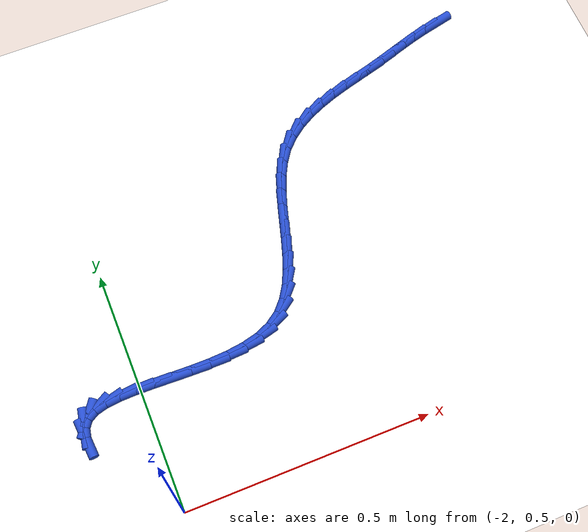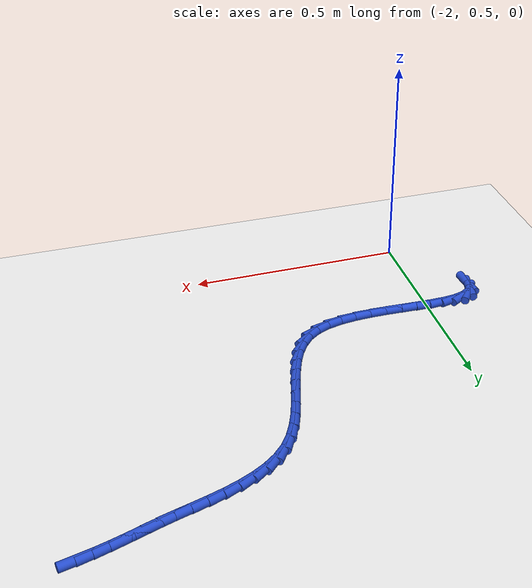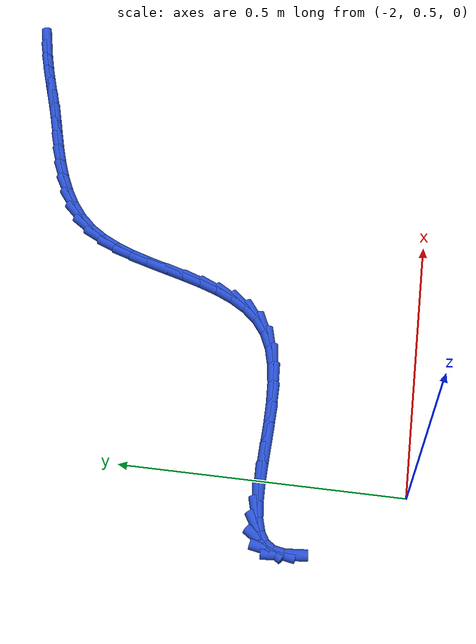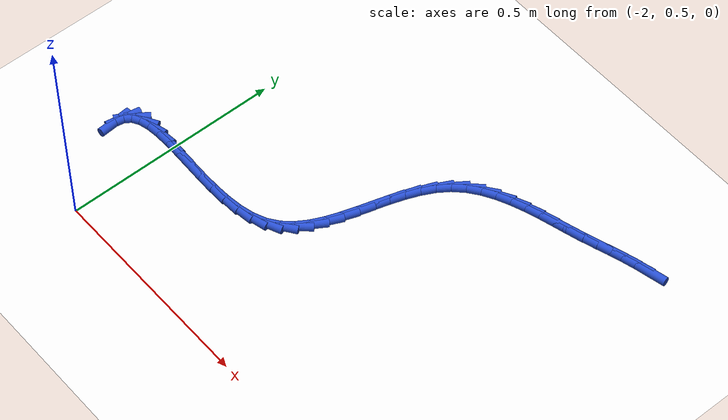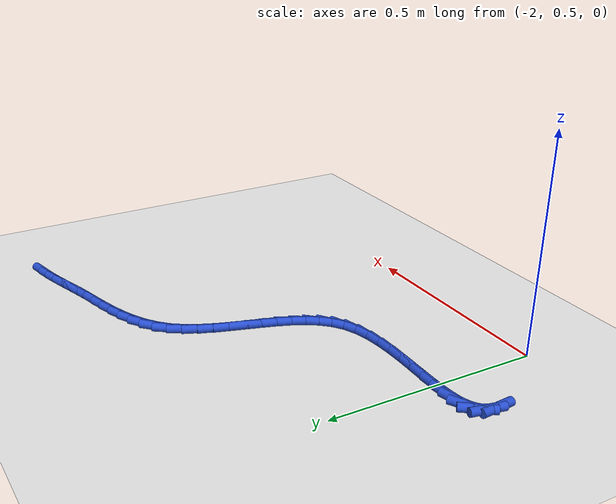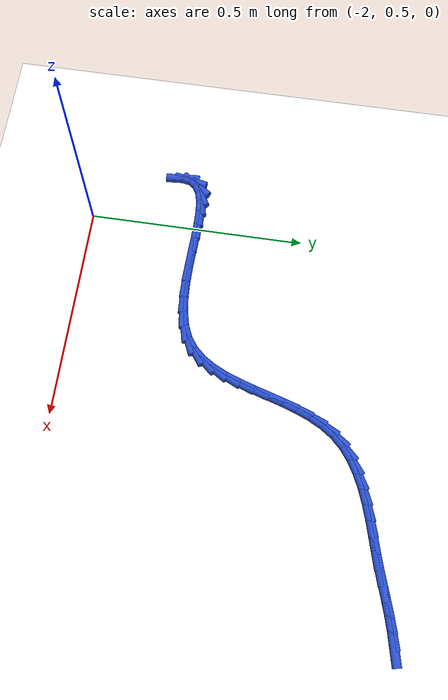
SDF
<sdf version="1.6">
 <world name="default">
  <model name="ground_plane">
   <static>1</static>
   <link name="link">
    <collision name="collision">
     <geometry><plane><normal>0 0 1</normal><size>100 100</size></plane></geometry>
     <surface><friction><ode><mu>100</mu><mu2>50</mu2></ode></friction></surface>
    </collision>
    <visual name="visual">
     <cast_shadows>0</cast_shadows>
     <geometry><plane><normal>0 0 1</normal><size>100 100</size></plane></geometry>
     <material>
      <script><uri>file://media/materials/scripts/gazebo.material</uri><name>Gazebo/WhiteGlow</name></script>
     </material>
    </visual>
   </link>
  </model>
  <model name="line">
   <link name="link_59">
    <pose>-1.1222265181047475 1.2898986173489588 0.01 0 1.57 0.2211786099502645</pose>
    <collision name="collision">
     <geometry><cylinder><radius>0.01</radius><length>0.08</length></cylinder></geometry>
    </collision>
    <visual name="visual">
     <material>
      <script><name>Gazebo/Blue</name><uri>file://media/materials/scripts/gazebo.material</uri></script>
     </material>
     <geometry><cylinder><radius>0.01</radius><length>0.08</length></cylinder></geometry>
    </visual>
   </link>
   <link name="link_60">
    <pose>-1.1531508498398142 1.2829450557514797 0.01 0 1.57 0.264994793104774</pose>
    <collision name="collision">
     <geometry><cylinder><radius>0.01</radius><length>0.08</length></cylinder></geometry>
    </collision>
    <visual name="visual">
     <material>
      <script><name>Gazebo/Blue</name><uri>file://media/materials/scripts/gazebo.material</uri></script>
     </material>
     <geometry><cylinder><radius>0.01</radius><length>0.08</length></cylinder></geometry>
    </visual>
   </link>
   <link name="link_61">
    <pose>-1.183879725162037 1.274605946857502 0.01 0 1.57 0.2933949541124015</pose>
    <collision name="collision">
     <geometry><cylinder><radius>0.01</radius><length>0.08</length></cylinder></geometry>
    </collision>
    <visual name="visual">
     <material>
      <script><name>Gazebo/Blue</name><uri>file://media/materials/scripts/gazebo.material</uri></script>
     </material>
     <geometry><cylinder><radius>0.01</radius><length>0.08</length></cylinder></geometry>
    </visual>
   </link>
   <link name="link_62">
    <pose>-1.2145235952226847 1.2653480100383683 0.01 0 1.57 0.3066198747373255</pose>
    <collision name="collision">
     <geometry><cylinder><radius>0.01</radius><length>0.08</length></cylinder></geometry>
    </collision>
    <visual name="visual">
     <material>
      <script><name>Gazebo/Blue</name><uri>file://media/materials/scripts/gazebo.material</uri></script>
     </material>
     <geometry><cylinder><radius>0.01</radius><length>0.08</length></cylinder></geometry>
    </visual>
   </link>
   <link name="link_63">
    <pose>-1.245192911173027 1.2556379646654199 0.01 0 1.57 0.3049184231849484</pose>
    <collision name="collision">
     <geometry><cylinder><radius>0.01</radius><length>0.08</length></cylinder></geometry>
    </collision>
    <visual name="visual">
     <material>
      <script><name>Gazebo/Blue</name><uri>file://media/materials/scripts/gazebo.material</uri></script>
     </material>
     <geometry><cylinder><radius>0.01</radius><length>0.08</length></cylinder></geometry>
    </visual>
   </link>
   <link name="link_64">
    <pose>-1.2759981241643317 1.2459425301099993 0.01 0 1.57 0.2884592694327951</pose>
    <collision name="collision">
     <geometry><cylinder><radius>0.01</radius><length>0.08</length></cylinder></geometry>
    </collision>
    <visual name="visual">
     <material>
      <script><name>Gazebo/Blue</name><uri>file://media/materials/scripts/gazebo.material</uri></script>
     </material>
     <geometry><cylinder><radius>0.01</radius><length>0.08</length></cylinder></geometry>
    </visual>
   </link>
   <link name="link_65">
    <pose>-1.3070496853478675 1.2367284257434474 0.01 0 1.57 0.26529397620731876</pose>
    <collision name="collision">
     <geometry><cylinder><radius>0.01</radius><length>0.08</length></cylinder></geometry>
    </collision>
    <visual name="visual">
     <material>
      <script><name>Gazebo/Blue</name><uri>file://media/materials/scripts/gazebo.material</uri></script>
     </material>
     <geometry><cylinder><radius>0.01</radius><length>0.08</length></cylinder></geometry>
    </visual>
   </link>
   <link name="link_66">
    <pose>-1.3384939027532066 1.2281850882623178 0.01 0 1.57 0.2706685527284712</pose>
    <collision name="collision">
     <geometry><cylinder><radius>0.01</radius><length>0.08</length></cylinder></geometry>
    </collision>
    <visual name="visual">
     <material>
      <script><name>Gazebo/Blue</name><uri>file://media/materials/scripts/gazebo.material</uri></script>
     </material>
     <geometry><cylinder><radius>0.01</radius><length>0.08</length></cylinder></geometry>
    </visual>
   </link>
   <link name="link_67">
    <pose>-1.370566665443429 1.2192856012623614 0.01 0 1.57 0.3013720009431475</pose>
    <collision name="collision">
     <geometry><cylinder><radius>0.01</radius><length>0.08</length></cylinder></geometry>
    </collision>
    <visual name="visual">
     <material>
      <script><name>Gazebo/Blue</name><uri>file://media/materials/scripts/gazebo.material</uri></script>
     </material>
     <geometry><cylinder><radius>0.01</radius><length>0.08</length></cylinder></geometry>
    </visual>
   </link>
   <link name="link_68">
    <pose>-1.4028800203260274 1.209241312373913 0.01 0 1.57 0.3513051103394385</pose>
    <collision name="collision">
     <geometry><cylinder><radius>0.01</radius><length>0.08</length></cylinder></geometry>
    </collision>
    <visual name="visual">
     <material>
      <script><name>Gazebo/Blue</name><uri>file://media/materials/scripts/gazebo.material</uri></script>
     </material>
     <geometry><cylinder><radius>0.01</radius><length>0.08</length></cylinder></geometry>
    </visual>
   </link>
   <link name="link_69">
    <pose>-1.4346982187935329 1.1975796813628359 0.01 0 1.57 0.42247013322722143</pose>
    <collision name="collision">
     <geometry><cylinder><radius>0.01</radius><length>0.08</length></cylinder></geometry>
    </collision>
    <visual name="visual">
     <material>
      <script><name>Gazebo/Blue</name><uri>file://media/materials/scripts/gazebo.material</uri></script>
     </material>
     <geometry><cylinder><radius>0.01</radius><length>0.08</length></cylinder></geometry>
    </visual>
   </link>
   <link name="link_70">
    <pose>-1.465282584350777 1.1838308294456181 0.01 0 1.57 0.5179944931784832</pose>
    <collision name="collision">
     <geometry><cylinder><radius>0.01</radius><length>0.08</length></cylinder></geometry>
    </collision>
    <visual name="visual">
     <material>
      <script><name>Gazebo/Blue</name><uri>file://media/materials/scripts/gazebo.material</uri></script>
     </material>
     <geometry><cylinder><radius>0.01</radius><length>0.08</length></cylinder></geometry>
    </visual>
   </link>
   <link name="link_71">
    <pose>-1.493894440502591 1.167524877838749 0.01 0 1.57 0.6412097324673126</pose>
    <collision name="collision">
     <geometry><cylinder><radius>0.01</radius><length>0.08</length></cylinder></geometry>
    </collision>
    <visual name="visual">
     <material>
      <script><name>Gazebo/Blue</name><uri>file://media/materials/scripts/gazebo.material</uri></script>
     </material>
     <geometry><cylinder><radius>0.01</radius><length>0.08</length></cylinder></geometry>
    </visual>
   </link>
   <link name="link_72">
    <pose>-1.5197951107538052 1.1481919477587161 0.01 0 1.57 0.7937512991357554</pose>
    <collision name="collision">
     <geometry><cylinder><radius>0.01</radius><length>0.08</length></cylinder></geometry>
    </collision>
    <visual name="visual">
     <material>
      <script><name>Gazebo/Blue</name><uri>file://media/materials/scripts/gazebo.material</uri></script>
     </material>
     <geometry><cylinder><radius>0.01</radius><length>0.08</length></cylinder></geometry>
    </visual>
   </link>
   <link name="link_73">
    <pose>-1.5422463210009978 1.1253624931745079 0.01 0 1.57 0.9586979332750399</pose>
    <collision name="collision">
     <geometry><cylinder><radius>0.01</radius><length>0.08</length></cylinder></geometry>
    </collision>
    <visual name="visual">
     <material>
      <script><name>Gazebo/Blue</name><uri>file://media/materials/scripts/gazebo.material</uri></script>
     </material>
     <geometry><cylinder><radius>0.01</radius><length>0.08</length></cylinder></geometry>
    </visual>
   </link>
   <link name="link_74">
    <pose>-1.5608566633826106 1.09885380447772 0.01 0 1.57 1.0916218287170347</pose>
    <collision name="collision">
     <geometry><cylinder><radius>0.01</radius><length>0.08</length></cylinder></geometry>
    </collision>
    <visual name="visual">
     <material>
      <script><name>Gazebo/Blue</name><uri>file://media/materials/scripts/gazebo.material</uri></script>
     </material>
     <geometry><cylinder><radius>0.01</radius><length>0.08</length></cylinder></geometry>
    </visual>
   </link>
   <link name="link_75">
    <pose>-1.5762149464742248 1.0692937489979082 0.01 0 1.57 1.186764339360661</pose>
    <collision name="collision">
     <geometry><cylinder><radius>0.01</radius><length>0.08</length></cylinder></geometry>
    </collision>
    <visual name="visual">
     <material>
      <script><name>Gazebo/Blue</name><uri>file://media/materials/scripts/gazebo.material</uri></script>
     </material>
     <geometry><cylinder><radius>0.01</radius><length>0.08</length></cylinder></geometry>
    </visual>
   </link>
   <link name="link_76">
    <pose>-1.5890819057750087 1.0374523667460807 0.01 0 1.57 1.2485381567195384</pose>
    <collision name="collision">
     <geometry><cylinder><radius>0.01</radius><length>0.08</length></cylinder></geometry>
    </collision>
    <visual name="visual">
     <material>
      <script><name>Gazebo/Blue</name><uri>file://media/materials/scripts/gazebo.material</uri></script>
     </material>
     <geometry><cylinder><radius>0.01</radius><length>0.08</length></cylinder></geometry>
    </visual>
   </link>
   <link name="link_77">
    <pose>-1.6002182767841304 1.0040996977332457 0.01 0 1.57 1.2809994684937047</pose>
    <collision name="collision">
     <geometry><cylinder><radius>0.01</radius><length>0.08</length></cylinder></geometry>
    </collision>
    <visual name="visual">
     <material>
      <script><name>Gazebo/Blue</name><uri>file://media/materials/scripts/gazebo.material</uri></script>
     </material>
     <geometry><cylinder><radius>0.01</radius><length>0.08</length></cylinder></geometry>
    </visual>
   </link>
   <link name="link_78">
    <pose>-1.6103847950007586 0.9700057819704117 0.01 0 1.57 1.2864141579477852</pose>
    <collision name="collision">
     <geometry><cylinder><radius>0.01</radius><length>0.08</length></cylinder></geometry>
    </collision>
    <visual name="visual">
     <material>
      <script><name>Gazebo/Blue</name><uri>file://media/materials/scripts/gazebo.material</uri></script>
     </material>
     <geometry><cylinder><radius>0.01</radius><length>0.08</length></cylinder></geometry>
    </visual>
   </link>
   <link name="link_79">
    <pose>-1.6203421959240607 0.9359406594685874 0.01 0 1.57 1.2648115330292118</pose>
    <collision name="collision">
     <geometry><cylinder><radius>0.01</radius><length>0.08</length></cylinder></geometry>
    </collision>
    <visual name="visual">
     <material>
      <script><name>Gazebo/Blue</name><uri>file://media/materials/scripts/gazebo.material</uri></script>
     </material>
     <geometry><cylinder><radius>0.01</radius><length>0.08</length></cylinder></geometry>
    </visual>
   </link>
   <link name="link_80">
    <pose>-1.6308512150532053 0.9026743702387809 0.01 0 1.57 1.2138290691568483</pose>
    <collision name="collision">
     <geometry><cylinder><radius>0.01</radius><length>0.08</length></cylinder></geometry>
    </collision>
    <visual name="visual">
     <material>
      <script><name>Gazebo/Blue</name><uri>file://media/materials/scripts/gazebo.material</uri></script>
     </material>
     <geometry><cylinder><radius>0.01</radius><length>0.08</length></cylinder></geometry>
    </visual>
   </link>
   <link name="link_81">
    <pose>-1.6426725878873598 0.8709769542920002 0.01 0 1.57 1.128761477273272</pose>
    <collision name="collision">
     <geometry><cylinder><radius>0.01</radius><length>0.08</length></cylinder></geometry>
    </collision>
    <visual name="visual">
     <material>
      <script><name>Gazebo/Blue</name><uri>file://media/materials/scripts/gazebo.material</uri></script>
     </material>
     <geometry><cylinder><radius>0.01</radius><length>0.08</length></cylinder></geometry>
    </visual>
   </link>
   <link name="link_82">
    <pose>-1.6565670499256937 0.8416184516392549 0.01 0 1.57 1.003415850891657</pose>
    <collision name="collision">
     <geometry><cylinder><radius>0.01</radius><length>0.08</length></cylinder></geometry>
    </collision>
    <visual name="visual">
     <material>
      <script><name>Gazebo/Blue</name><uri>file://media/materials/scripts/gazebo.material</uri></script>
     </material>
     <geometry><cylinder><radius>0.01</radius><length>0.08</length></cylinder></geometry>
    </visual>
   </link>
   <link name="link_83">
    <pose>-1.6732953366673726 0.8153689022915519 0.01 0 1.57 0.8333245614664426</pose>
    <collision name="collision">
     <geometry><cylinder><radius>0.01</radius><length>0.08</length></cylinder></geometry>
    </collision>
    <visual name="visual">
     <material>
      <script><name>Gazebo/Blue</name><uri>file://media/materials/scripts/gazebo.material</uri></script>
     </material>
     <geometry><cylinder><radius>0.01</radius><length>0.08</length></cylinder></geometry>
    </visual>
   </link>
   <link name="link_84">
    <pose>-1.693618183611566 0.7929983462599004 0.01 0 1.57 0.6227763467678741</pose>
    <collision name="collision">
     <geometry><cylinder><radius>0.01</radius><length>0.08</length></cylinder></geometry>
    </collision>
    <visual name="visual">
     <material>
      <script><name>Gazebo/Blue</name><uri>file://media/materials/scripts/gazebo.material</uri></script>
     </material>
     <geometry><cylinder><radius>0.01</radius><length>0.08</length></cylinder></geometry>
    </visual>
   </link>
   <link name="link_85">
    <pose>-1.718296285675007 0.7752767865180342 0.01 0 1.57 0.4047645671634215</pose>
    <collision name="collision">
     <geometry><cylinder><radius>0.01</radius><length>0.08</length></cylinder></geometry>
    </collision>
    <visual name="visual">
     <material>
      <script><name>Gazebo/Blue</name><uri>file://media/materials/scripts/gazebo.material</uri></script>
     </material>
     <geometry><cylinder><radius>0.01</radius><length>0.08</length></cylinder></geometry>
    </visual>
   </link>
   <link name="link_86">
    <pose>-1.7477459599238494 0.7626599320181658 0.01 0 1.57 0.238490739763434</pose>
    <collision name="collision">
     <geometry><cylinder><radius>0.01</radius><length>0.08</length></cylinder></geometry>
    </collision>
    <visual name="visual">
     <material>
      <script><name>Gazebo/Blue</name><uri>file://media/materials/scripts/gazebo.material</uri></script>
     </material>
     <geometry><cylinder><radius>0.01</radius><length>0.08</length></cylinder></geometry>
    </visual>
   </link>
   <link name="link_87">
    <pose>-1.7812028613994244 0.7545259688253116 0.01 0 1.57 0.12294308487887502</pose>
    <collision name="collision">
     <geometry><cylinder><radius>0.01</radius><length>0.08</length></cylinder></geometry>
    </collision>
    <visual name="visual">
     <material>
      <script><name>Gazebo/Blue</name><uri>file://media/materials/scripts/gazebo.material</uri></script>
     </material>
     <geometry><cylinder><radius>0.01</radius><length>0.08</length></cylinder></geometry>
    </visual>
   </link>
   <link name="link_88">
    <pose>-1.8176498294269408 0.7500223525205435 0.01 0 1.57 0.0448896440004674</pose>
    <collision name="collision">
     <geometry><cylinder><radius>0.01</radius><length>0.08</length></cylinder></geometry>
    </collision>
    <visual name="visual">
     <material>
      <script><name>Gazebo/Blue</name><uri>file://media/materials/scripts/gazebo.material</uri></script>
     </material>
     <geometry><cylinder><radius>0.01</radius><length>0.08</length></cylinder></geometry>
    </visual>
   </link>
   <link name="link_89">
    <pose>-1.8560697033316107 0.7482965386849347 0.01 0 1.57 -0.005065126937156817</pose>
    <collision name="collision">
     <geometry><cylinder><radius>0.01</radius><length>0.08</length></cylinder></geometry>
    </collision>
    <visual name="visual">
     <material>
      <script><name>Gazebo/Blue</name><uri>file://media/materials/scripts/gazebo.material</uri></script>
     </material>
     <geometry><cylinder><radius>0.01</radius><length>0.08</length></cylinder></geometry>
    </visual>
   </link>
   <link name="link_90">
    <pose>-1.895445322438645 0.7484959828995583 0.01 0 1.57 -0.03234744664399977</pose>
    <collision name="collision">
     <geometry><cylinder><radius>0.01</radius><length>0.08</length></cylinder></geometry>
    </collision>
    <visual name="visual">
     <material>
      <script><name>Gazebo/Blue</name><uri>file://media/materials/scripts/gazebo.material</uri></script>
     </material>
     <geometry><cylinder><radius>0.01</radius><length>0.08</length></cylinder></geometry>
    </visual>
   </link>
   <link name="link_91">
    <pose>-1.9347595260732533 0.7497681407454867 0.01 0 1.57 -0.039009951804378495</pose>
    <collision name="collision">
     <geometry><cylinder><radius>0.01</radius><length>0.08</length></cylinder></geometry>
    </collision>
    <visual name="visual">
     <material>
      <script><name>Gazebo/Blue</name><uri>file://media/materials/scripts/gazebo.material</uri></script>
     </material>
     <geometry><cylinder><radius>0.01</radius><length>0.08</length></cylinder></geometry>
    </visual>
   </link>
   <link name="link_92">
    <pose>-1.9729951535606465 0.7512604678037926 0.01 0 1.57 -0.023790597804591914</pose>
    <collision name="collision">
     <geometry><cylinder><radius>0.01</radius><length>0.08</length></cylinder></geometry>
    </collision>
    <visual name="visual">
     <material>
      <script><name>Gazebo/Blue</name><uri>file://media/materials/scripts/gazebo.material</uri></script>
     </material>
     <geometry><cylinder><radius>0.01</radius><length>0.08</length></cylinder></geometry>
    </visual>
   </link>
   <link name="link_93">
    <pose>-2.0091350442260363 0.7521204196555491 0.01 0 1.57 0.01892068075637324</pose>
    <collision name="collision">
     <geometry><cylinder><radius>0.01</radius><length>0.08</length></cylinder></geometry>
    </collision>
    <visual name="visual">
     <material>
      <script><name>Gazebo/Blue</name><uri>file://media/materials/scripts/gazebo.material</uri></script>
     </material>
     <geometry><cylinder><radius>0.01</radius><length>0.08</length></cylinder></geometry>
    </visual>
   </link>
   <link name="link_94">
    <pose>-2.042162037394632 0.7514954518818288 0.01 0 1.57 0.10216026773957461</pose>
    <collision name="collision">
     <geometry><cylinder><radius>0.01</radius><length>0.08</length></cylinder></geometry>
    </collision>
    <visual name="visual">
     <material>
      <script><name>Gazebo/Blue</name><uri>file://media/materials/scripts/gazebo.material</uri></script>
     </material>
     <geometry><cylinder><radius>0.01</radius><length>0.08</length></cylinder></geometry>
    </visual>
   </link>
   <link name="link_95">
    <pose>-2.071058972391644 0.7485330200637041 0.01 0 1.57 0.2534810176129779</pose>
    <collision name="collision">
     <geometry><cylinder><radius>0.01</radius><length>0.08</length></cylinder></geometry>
    </collision>
    <visual name="visual">
     <material>
      <script><name>Gazebo/Blue</name><uri>file://media/materials/scripts/gazebo.material</uri></script>
     </material>
     <geometry><cylinder><radius>0.01</radius><length>0.08</length></cylinder></geometry>
    </visual>
   </link>
   <link name="link_96">
    <pose>-2.094808688542285 0.7423805797822481 0.01 0 1.57 0.5253922028446023</pose>
    <collision name="collision">
     <geometry><cylinder><radius>0.01</radius><length>0.08</length></cylinder></geometry>
    </collision>
    <visual name="visual">
     <material>
      <script><name>Gazebo/Blue</name><uri>file://media/materials/scripts/gazebo.material</uri></script>
     </material>
     <geometry><cylinder><radius>0.01</radius><length>0.08</length></cylinder></geometry>
    </visual>
   </link>
   <link name="link_97">
    <pose>-2.112394025171763 0.7321855866185337 0.01 0 1.57 0.9573192326502775</pose>
    <collision name="collision">
     <geometry><cylinder><radius>0.01</radius><length>0.08</length></cylinder></geometry>
    </collision>
    <visual name="visual">
     <material>
      <script><name>Gazebo/Blue</name><uri>file://media/materials/scripts/gazebo.material</uri></script>
     </material>
     <geometry><cylinder><radius>0.01</radius><length>0.08</length></cylinder></geometry>
    </visual>
   </link>
   <link name="link_98">
    <pose>-2.122944989373989 0.7172007012857636 0.01 0 1.57 1.3769547991387674</pose>
    <collision name="collision">
     <geometry><cylinder><radius>0.01</radius><length>0.08</length></cylinder></geometry>
    </collision>
    <visual name="visual">
     <material>
      <script><name>Gazebo/Blue</name><uri>file://media/materials/scripts/gazebo.material</uri></script>
     </material>
     <geometry><cylinder><radius>0.01</radius><length>0.08</length></cylinder></geometry>
    </visual>
   </link>
   <link name="link_99">
    <pose>-2.126803536649999 0.6975449643670973 0.01 0 1.57 -1.4912405373739241</pose>
    <collision name="collision">
     <geometry><cylinder><radius>0.01</radius><length>0.08</length></cylinder></geometry>
    </collision>
    <visual name="visual">
     <material>
      <script><name>Gazebo/Blue</name><uri>file://media/materials/scripts/gazebo.material</uri></script>
     </material>
     <geometry><cylinder><radius>0.01</radius><length>0.08</length></cylinder></geometry>
    </visual>
   </link>
  </model>
 </world>
</sdf>
